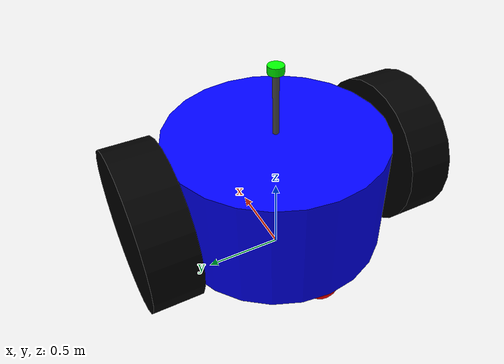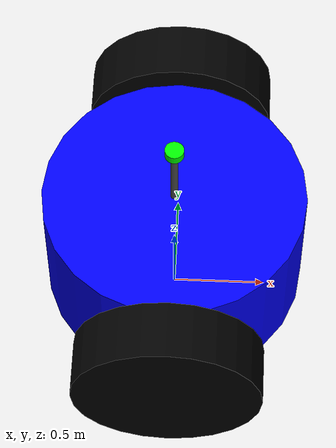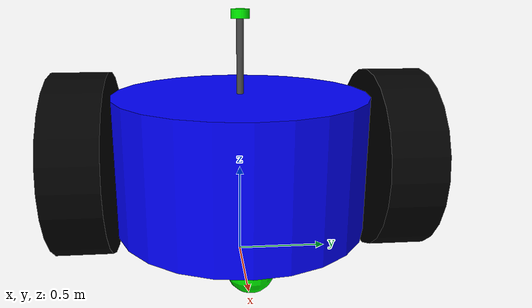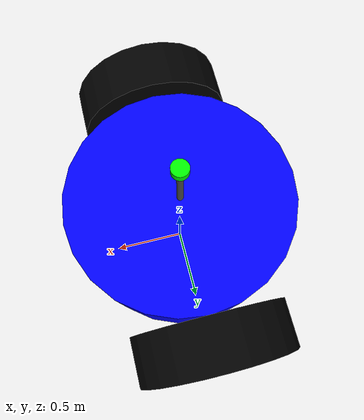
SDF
<?xml version="1.0" ?>
<sdf version='1.10'>
<model name='Robot' canonical_link='base_link'>
      <!-- ✅ CORRIGIDO: Modelo começa no chão (z=0) -->
      <pose>0 0 0 0 0 0</pose>

      <!-- BASE_FOOTPRINT - Projeção do robô no chão (z=0) -->
      <link name='base_footprint'>
        <pose relative_to='__model__'>0 0 0 0 0 0</pose>
      </link>

      <!-- BASE_LINK - Frame central do robô (elevado 0.55m) -->
      <link name='base_link'>
        <pose relative_to='__model__'>0 0 0.55 0 0 0</pose>
      </link>

      <!-- Joint entre base_footprint e base_link -->
      <joint name="base_footprint_joint" type="fixed">
        <parent>base_footprint</parent>
        <child>base_link</child>
      </joint>

      <!--chassis-->
      <link name='chassis'>
        <pose relative_to='base_link'>0 0 0 0 0 0</pose>
        <inertial>
        <mass>1</mass>
          <inertia>
            <ixx>0.145833</ixx>
            <ixy>0</ixy>
            <ixz>0</ixz>
            <iyy>0.145833</iyy>
            <iyz>0</iyz>
            <izz>0.125</izz>
          </inertia>
        </inertial>
        <visual name='visual'>
          <geometry>
            <cylinder>
              <radius>0.7</radius>
              <length>0.75</length>
            </cylinder>
          </geometry>
          <!--Color of the link-->
          <material>
            <ambient>0.0 0.0 1.0 1</ambient>
            <diffuse>0.0 0.0 1.0 1</diffuse>
            <specular>0.0 0.0 1.0 1</specular>
          </material>
        </visual>
        <collision name='collision'>
          <geometry>
            <cylinder>
              <radius>0.7</radius>
              <length>0.75</length>
            </cylinder>
          </geometry>
        </collision>
      </link>

      <!-- LIDAR link separado - Elevado 0.8m acima do chassis para evitar detectar partes do robô -->
      <link name="lidar_link">
        <pose relative_to="chassis">0 0 0.8 0 0 0</pose>
        <inertial>
          <mass>0.1</mass>
          <inertia>
            <ixx>0.0001</ixx>
            <ixy>0</ixy>
            <ixz>0</ixz>
            <iyy>0.0001</iyy>
            <iyz>0</iyz>
            <izz>0.0001</izz>
          </inertia>
        </inertial>

        <!-- Visualização da "torre" do LIDAR -->
        <visual name='lidar_tower'>
          <pose>0 0 -0.4 0 0 0</pose>
          <geometry>
            <cylinder>
              <radius>0.02</radius>
              <length>0.8</length>
            </cylinder>
          </geometry>
          <material>
            <ambient>0.3 0.3 0.3 1</ambient>
            <diffuse>0.3 0.3 0.3 1</diffuse>
            <specular>0.3 0.3 0.3 1</specular>
          </material>
        </visual>

        <!-- Visualização do sensor LIDAR -->
        <visual name='lidar_sensor'>
          <geometry>
            <cylinder>
              <radius>0.05</radius>
              <length>0.05</length>
            </cylinder>
          </geometry>
          <material>
            <ambient>0.0 1.0 0.0 1</ambient>
            <diffuse>0.0 1.0 0.0 1</diffuse>
            <specular>0.0 1.0 0.0 1</specular>
          </material>
        </visual>

        <!-- LIDAR/SCAN - PARÂMETROS MANTIDOS INALTERADOS -->
        <sensor name='gpu_lidar' type='gpu_lidar'>
          <pose relative_to='lidar_link'>0 0 0 0 0 0</pose>
          <topic>lidar</topic>
          <update_rate>10</update_rate>
          <gz_frame_id>lidar_link</gz_frame_id>
          <ray>
            <scan>
              <horizontal>
                <samples>720</samples>
                <resolution>1</resolution>
                <min_angle>-3.14159</min_angle>
                <max_angle>3.14159</max_angle>
              </horizontal>
              <vertical>
                <samples>1</samples>
                <resolution>0.01</resolution>
                <min_angle>0</min_angle>
                <max_angle>0</max_angle>
              </vertical>
            </scan>
            <range>
              <min>0.08</min>
              <max>10.0</max>
              <resolution>0.01</resolution>
            </range>
          </ray>
          <always_on>1</always_on>
          <visualize>true</visualize>
        </sensor>
      </link>

      <!-- Joint fixo entre chassis e LIDAR -->
      <joint name="lidar_joint" type="fixed">
        <parent>chassis</parent>
        <child>lidar_link</child>
      </joint>

      <!-- Joint fixo entre base_link e chassis -->
      <joint name="base_link_joint" type="fixed">
        <parent>base_link</parent>
        <child>chassis</child>
      </joint>

      <!--left_wheel-->
      <link name='left_wheel'>
        <pose relative_to='chassis'>0 0.85 0 -1.5707 0 0</pose>
        <inertial>
        <mass>1</mass>
          <inertia>
            <ixx>0.145833</ixx>
            <ixy>0</ixy>
            <ixz>0</ixz>
            <iyy>0.145833</iyy>
            <iyz>0</iyz>
            <izz>0.125</izz>
          </inertia>
        </inertial>
        <visual name='visual'>
          <geometry>
            <cylinder>
              <radius>0.5</radius>
              <length>0.3</length>
            </cylinder>
          </geometry>
          <!--Color of the link-->
          <material>
            <ambient>0.0 0.0 0 1</ambient>
            <diffuse>0.0 0.0 0 1</diffuse>
            <specular>0.0 0.0 0 1</specular>
          </material>
        </visual>
        <collision name='collision'>
          <geometry>
            <cylinder>
              <radius>0.5</radius>
              <length>0.3</length>
            </cylinder>
          </geometry>
        </collision>
      </link>

      <!--right_wheel-->
      <link name='right_wheel'>
        <pose relative_to='chassis'>0 -0.85 0 -1.5707 0 0</pose>
        <inertial>
        <mass>1</mass>
          <inertia>
            <ixx>0.145833</ixx>
            <ixy>0</ixy>
            <ixz>0</ixz>
            <iyy>0.145833</iyy>
            <iyz>0</iyz>
            <izz>0.125</izz>
          </inertia>
        </inertial>
        <visual name='visual'>
          <geometry>
            <cylinder>
              <radius>0.5</radius>
              <length>0.3</length>
            </cylinder>
          </geometry>
          <!--Color of the link-->
          <material>
            <ambient>0.0 0.0 0 1</ambient>
            <diffuse>0.0 0.0 0 1</diffuse>
            <specular>0.0 0.0 0 1</specular>
          </material>
        </visual>
        <collision name='collision'>
          <geometry>
            <cylinder>
              <radius>0.5</radius>
              <length>0.3</length>
            </cylinder>
          </geometry>
        </collision>
      </link>

      <!--arbitrary frame-->
      <frame name="caster_frame" attached_to='chassis'>
          <pose>0 0 0 0 0 0</pose>
      </frame>

      <!--caster wheel frontal-->
      <link name='caster_front'>
          <pose relative_to='caster_frame'>0.575 0 -0.375 0 -0 0</pose>
          <inertial>
              <mass>0.1</mass>
              <inertia>
                  <ixx>0.016</ixx>
                  <ixy>0</ixy>
                  <ixz>0</ixz>
                  <iyy>0.016</iyy>
                  <iyz>0</iyz>
                  <izz>0.016</izz>
              </inertia>
          </inertial>
          <visual name='visual'>
              <geometry>
                  <sphere>
                      <radius>0.12</radius>
                  </sphere>
              </geometry>
              <material>
                  <ambient>0.0 1 0.0 1</ambient>
                  <diffuse>0.0 1 0.0 1</diffuse>
                  <specular>0.0 1 0.0 1</specular>
              </material>
          </visual>
          <collision name='collision'>
              <geometry>
                  <sphere>
                      <radius>0.12</radius>
                  </sphere>
              </geometry>
          </collision>
      </link>

      <!--caster wheel traseira-->
      <link name='caster_rear'>
          <pose relative_to='caster_frame'>-0.575 0 -0.375 0 -0 0</pose>
          <inertial>
              <mass>0.1</mass>
              <inertia>
                  <ixx>0.016</ixx>
                  <ixy>0</ixy>
                  <ixz>0</ixz>
                  <iyy>0.016</iyy>
                  <iyz>0</iyz>
                  <izz>0.016</izz>
              </inertia>
          </inertial>
          <visual name='visual'>
              <geometry>
                  <sphere>
                      <radius>0.12</radius>
                  </sphere>
              </geometry>
              <material>
                  <ambient>1 0.0 0.0 1</ambient>
                  <diffuse>1 0.0 0.0 1</diffuse>
                  <specular>1 0.0 0.0 1</specular>
              </material>
          </visual>
          <collision name='collision'>
              <geometry>
                  <sphere>
                      <radius>0.12</radius>
                  </sphere>
              </geometry>
          </collision>
      </link>

      <!--left wheel joint-->
      <joint name='left_wheel_joint' type='revolute'>
          <pose relative_to='left_wheel'/>
          <parent>chassis</parent>
          <child>left_wheel</child>
          <axis>
              <xyz expressed_in='__model__'>0 1 0</xyz> <!--can be descired to any frame or even arbitrary frames-->
              <limit>
                  <lower>-1.79769e+308</lower>    <!--negative infinity-->
                  <upper>1.79769e+308</upper>     <!--positive infinity-->
              </limit>
          </axis>
      </joint>

      <!--right wheel joint-->
      <joint name='right_wheel_joint' type='revolute'>
          <pose relative_to='right_wheel'/>
          <parent>chassis</parent>
          <child>right_wheel</child>
          <axis>
              <xyz expressed_in='__model__'>0 1 0</xyz>
              <limit>
                  <lower>-1.79769e+308</lower>    <!--negative infinity-->
                  <upper>1.79769e+308</upper>     <!--positive infinity-->
              </limit>
          </axis>
      </joint>

      <!--caster wheel frontal joint-->
      <joint name='caster_front_wheel' type='ball'>
          <parent>chassis</parent>
          <child>caster_front</child>
      </joint>

      <!--caster wheel traseira joint-->
      <joint name='caster_rear_wheel' type='ball'>
          <parent>chassis</parent>
          <child>caster_rear</child>
      </joint>

      <!-- Plugin DiffDrive - Movimento e Odometria -->
      <plugin
        name="gz::sim::systems::DiffDrive"
        filename="gz-sim-diff-drive-system">

        <!-- Ligações das rodas -->
        <left_joint>left_wheel_joint</left_joint>
        <right_joint>right_wheel_joint</right_joint>

        <!-- ✅ CORRIGIDO: Parâmetros físicos REAIS do modelo -->
        <wheel_separation>1.7</wheel_separation>
        <wheel_radius>0.5</wheel_radius>

        <!-- ✅ CORRIGIDO: Frequência sincronizada com TF (30Hz) -->
        <odom_publish_frequency>30</odom_publish_frequency>

        <!-- Tópicos e frames -->
        <topic>cmd_vel</topic>
        <odom_topic>odom</odom_topic>

        <!-- Frames TF - Publica odom → base_footprint -->
        <frame_id>odom</frame_id>
        <child_frame_id>base_footprint</child_frame_id>

        <!-- Publicação da odometria e TF -->
        <publish_odom>true</publish_odom>
        <publish_odom_tf>true</publish_odom_tf>
        <publish_wheel_tf>false</publish_wheel_tf>
      </plugin>

      <!-- plugin para publcar os joint_state-->
      <plugin
        filename="gz-sim-joint-state-publisher-system"
        name="gz::sim::systems::JointStatePublisher">
        <publish_frequency>10.0</publish_frequency>
        <topic>joint_states</topic>
      </plugin>

      <!-- Pose plugin-->
      <plugin
        filename="gz-sim-pose-publisher-system"
        name="gz::sim::systems::PosePublisher">
        <publish_frequency>30.0</publish_frequency>
        <publish_all>false</publish_all> <!-- ✅ CORRIGIDO: Só o Robot, não links internos -->
        <topic>model/Robot/pose</topic>
      </plugin>

      <plugin
        filename="plugins/RobotController.py"
        name="RobotController" >
      </plugin>

      <!-- Moving Left-->
      <plugin filename="gz-sim-triggered-publisher-system"
        name="gz::sim::systems::TriggeredPublisher">
        <input type="gz.msgs.Int32" topic="/keyboard/keypress">
          <match field="data">16777234</match>
        </input>
        <output type="gz.msgs.Twist" topic="/cmd_vel">
          linear: {x: 0.0}, angular: {z: 0.5}
        </output>
      </plugin>
      <!-- Moving Forward-->
      <plugin filename="gz-sim-triggered-publisher-system"
        name="gz::sim::systems::TriggeredPublisher">
        <input type="gz.msgs.Int32" topic="/keyboard/keypress">
          <match field="data">16777235</match>
        </input>
        <output type="gz.msgs.Twist" topic="/cmd_vel">
          linear: {x: 0.5}, angular: {z: 0.0}
        </output>
      </plugin>
      <!-- Moving Right-->
      <plugin filename="gz-sim-triggered-publisher-system"
        name="gz::sim::systems::TriggeredPublisher">
        <input type="gz.msgs.Int32" topic="/keyboard/keypress">
          <match field="data">16777236</match>
        </input>
        <output type="gz.msgs.Twist" topic="/cmd_vel">
          linear: {x: 0.0}, angular: {z: -0.5}
        </output>
      </plugin>
      <!-- Moving Backward-->
      <plugin filename="gz-sim-triggered-publisher-system"
        name="gz::sim::systems::TriggeredPublisher">
        <input type="gz.msgs.Int32" topic="/keyboard/keypress">
          <match field="data">16777237</match>
        </input>
        <output type="gz.msgs.Twist" topic="/cmd_vel">
          linear: {x: -0.5}, angular: {z: 0.0}
        </output>
      </plugin>
      <!-- Braking-->
      <plugin filename="gz-sim-triggered-publisher-system"
        name="gz::sim::systems::TriggeredPublisher">
        <input type="gz.msgs.Int32" topic="/keyboard/keypress">
          <match field="data">66</match>
        </input>
        <output type="gz.msgs.Twist" topic="/cmd_vel">
          linear: {x: 0}, angular: {z: 0.0}
        </output>
      </plugin>

    </model>
</sdf>
